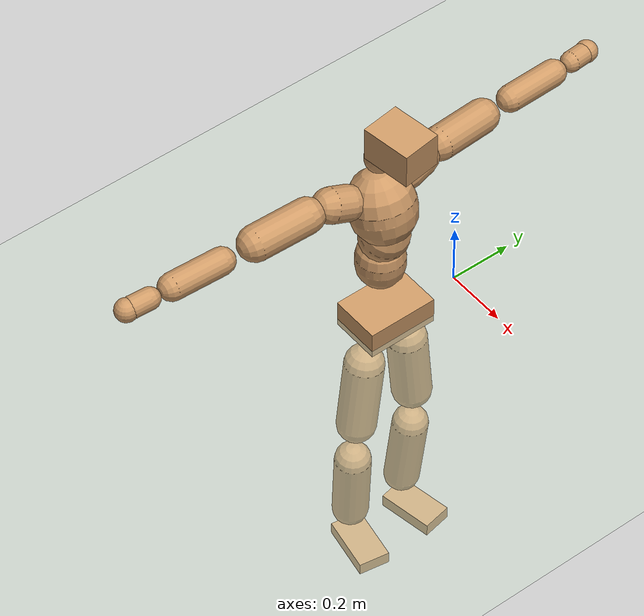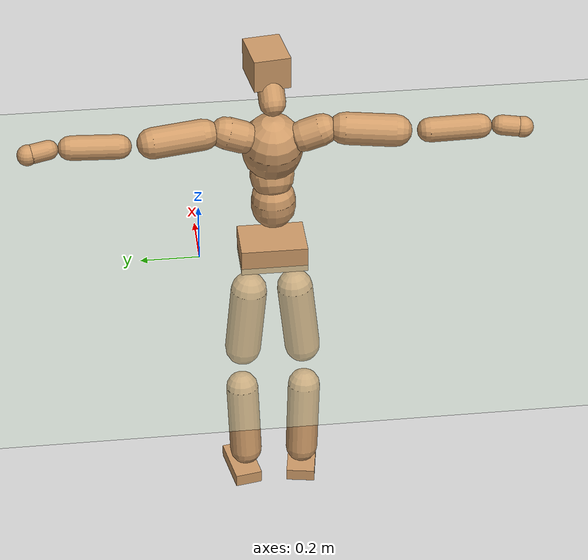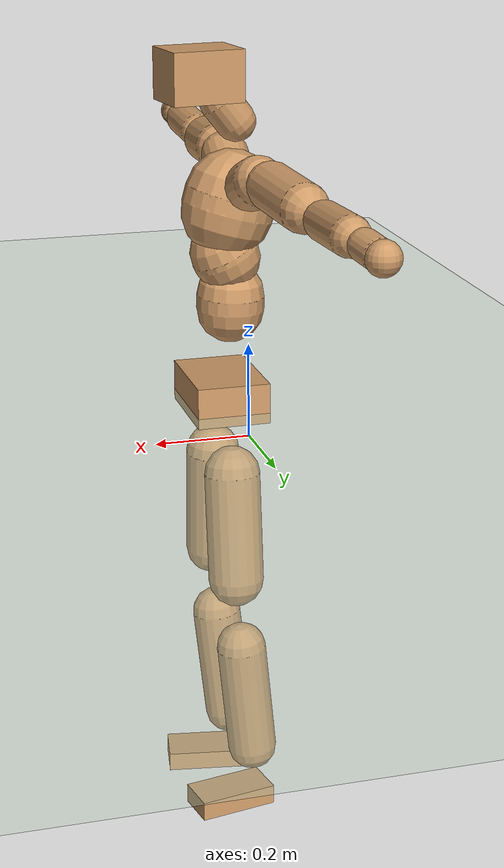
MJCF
<mujoco model="humanoid">
  <compiler coordinate="local" angle="radian"/>
  <default>
    <joint damping="0.0" armature="0.01" stiffness="0.0" limited="true"/>
    <geom conaffinity="1" condim="3" contype="7" margin="0.001" rgba="0.8 0.6 .4 1"/>
  </default>
  <asset>
    <texture type="skybox" builtin="gradient" rgb1=".4 .5 .6" rgb2="0 0 0" width="100" height="100"/>
    <texture builtin="flat" height="1278" mark="cross" markrgb="1 1 1" name="texgeom" random="0.01" rgb1="0.8 0.6 0.4" rgb2="0.8 0.6 0.4" type="cube" width="127"/>
    <texture builtin="checker" height="100" name="texplane" rgb1="0 0 0" rgb2="0.8 0.8 0.8" type="2d" width="100"/>
    <material name="MatPlane" reflectance="0.5" shininess="1" specular="1" texrepeat="60 60" texture="texplane"/>
    <material name="geom" texture="texgeom" texuniform="true"/>
  </asset>
  <worldbody>
    <light cutoff="100" diffuse="1 1 1" dir="-0 0 -1.3" directional="true" exponent="1" pos="0 0 1.3" specular=".1 .1 .1"/>
    <geom conaffinity="1" condim="3" name="floor" pos="0 0 0" rgba="0.8 0.9 0.8 1" size="100 100 .2" type="plane" material="MatPlane"/>
    <body name="Pelvis" pos="0.0011 -0.2469 0.0328">
      <freejoint name="Pelvis"/>
      <geom type="box" contype="1" conaffinity="1" density="500" pos="-0.0064 0.0000 -0.0133" size="0.0804 0.1121 0.0449" quat="1.0000 0.0000 0.0000 -0.0000" name="Pelvis"/>
      <body name="L_Hip" pos="-0.008 0.073 -0.0976">
        <joint name="L_Hip_x" type="hinge" pos="0 0 0" axis="1 0 0" stiffness="800" damping="80" armature="0.02" range="-180.0000 180.0000"/>
        <joint name="L_Hip_y" type="hinge" pos="0 0 0" axis="0 1 0" stiffness="800" damping="80" armature="0.02" range="-180.0000 180.0000"/>
        <joint name="L_Hip_z" type="hinge" pos="0 0 0" axis="0 0 1" stiffness="800" damping="80" armature="0.02" range="-180.0000 180.0000"/>
        <geom type="capsule" contype="1" conaffinity="1" density="500" fromto="-0.0007 0.0077 -0.0815 -0.0027 0.0308 -0.3260" size="0.0618" name="L_Hip"/>
        <body name="L_Knee" pos="-0.0034 0.0385 -0.4075">
          <joint name="L_Knee_x" type="hinge" pos="0 0 0" axis="1 0 0" stiffness="800" damping="80" armature="0.02" range="-180.0000 180.0000"/>
          <joint name="L_Knee_y" type="hinge" pos="0 0 0" axis="0 1 0" stiffness="800" damping="80" armature="0.02" range="-180.0000 180.0000"/>
          <joint name="L_Knee_z" type="hinge" pos="0 0 0" axis="0 0 1" stiffness="800" damping="80" armature="0.02" range="-180.0000 180.0000"/>
          <geom type="capsule" contype="1" conaffinity="1" density="500" fromto="-0.0091 -0.0027 -0.0870 -0.0366 -0.0110 -0.3478" size="0.0556" name="L_Knee"/>
          <body name="L_Ankle" pos="-0.0457 -0.0137 -0.4348">
            <joint name="L_Ankle_x" type="hinge" pos="0 0 0" axis="1 0 0" stiffness="800" damping="80" armature="0.02" range="-180.0000 180.0000"/>
            <joint name="L_Ankle_y" type="hinge" pos="0 0 0" axis="0 1 0" stiffness="800" damping="80" armature="0.02" range="-180.0000 180.0000"/>
            <joint name="L_Ankle_z" type="hinge" pos="0 0 0" axis="0 0 1" stiffness="800" damping="80" armature="0.02" range="-180.0000 180.0000"/>
            <geom type="box" contype="1" conaffinity="1" density="500" pos="0.0640 0.0118 -0.0311" size="0.0896 0.0475 0.0222" quat="0.9958 0.0000 0.0000 0.0910" name="L_Ankle"/>
            <body name="L_Toe" pos="0.128 0.0236 -0.0621">
              <joint name="L_Toe_x" type="hinge" pos="0 0 0" axis="1 0 0" stiffness="500" damping="50" armature="0.02" range="-180.0000 180.0000"/>
              <joint name="L_Toe_y" type="hinge" pos="0 0 0" axis="0 1 0" stiffness="500" damping="50" armature="0.02" range="-180.0000 180.0000"/>
              <joint name="L_Toe_z" type="hinge" pos="0 0 0" axis="0 0 1" stiffness="500" damping="50" armature="0.02" range="-180.0000 180.0000"/>
              <geom type="box" contype="1" conaffinity="1" density="500" pos="0.0000 0.0000 0.0316" size="0.0009 0.0024 0.0011" quat="0.9953 0.0000 0.0000 0.0970" name="L_Toe"/>
            </body>
          </body>
        </body>
      </body>
      <body name="R_Hip" pos="-0.0043 -0.0689 -0.0963">
        <joint name="R_Hip_x" type="hinge" pos="0 0 0" axis="1 0 0" stiffness="800" damping="80" armature="0.02" range="-180.0000 180.0000"/>
        <joint name="R_Hip_y" type="hinge" pos="0 0 0" axis="0 1 0" stiffness="800" damping="80" armature="0.02" range="-180.0000 180.0000"/>
        <joint name="R_Hip_z" type="hinge" pos="0 0 0" axis="0 0 1" stiffness="800" damping="80" armature="0.02" range="-180.0000 180.0000"/>
        <geom type="capsule" contype="1" conaffinity="1" density="500" fromto="-0.0012 -0.0089 -0.0834 -0.0050 -0.0357 -0.3337" size="0.0609" name="R_Hip"/>
        <body name="R_Knee" pos="-0.0062 -0.0447 -0.4172">
          <joint name="R_Knee_x" type="hinge" pos="0 0 0" axis="1 0 0" stiffness="800" damping="80" armature="0.02" range="-180.0000 180.0000"/>
          <joint name="R_Knee_y" type="hinge" pos="0 0 0" axis="0 1 0" stiffness="800" damping="80" armature="0.02" range="-180.0000 180.0000"/>
          <joint name="R_Knee_z" type="hinge" pos="0 0 0" axis="0 0 1" stiffness="800" damping="80" armature="0.02" range="-180.0000 180.0000"/>
          <geom type="capsule" contype="1" conaffinity="1" density="500" fromto="-0.0088 0.0034 -0.0871 -0.0354 0.0136 -0.3484" size="0.056" name="R_Knee"/>
          <body name="R_Ankle" pos="-0.0442 0.017 -0.4355">
            <joint name="R_Ankle_x" type="hinge" pos="0 0 0" axis="1 0 0" stiffness="800" damping="80" armature="0.02" range="-180.0000 180.0000"/>
            <joint name="R_Ankle_y" type="hinge" pos="0 0 0" axis="0 1 0" stiffness="800" damping="80" armature="0.02" range="-180.0000 180.0000"/>
            <joint name="R_Ankle_z" type="hinge" pos="0 0 0" axis="0 0 1" stiffness="800" damping="80" armature="0.02" range="-180.0000 180.0000"/>
            <geom type="box" contype="1" conaffinity="1" density="500" pos="0.0658 -0.0112 -0.0257" size="0.0915 0.0496 0.0215" quat="0.9964 0.0000 0.0000 -0.0844" name="R_Ankle"/>
            <body name="R_Toe" pos="0.1317 -0.0225 -0.0514">
              <joint name="R_Toe_x" type="hinge" pos="0 0 0" axis="1 0 0" stiffness="500" damping="50" armature="0.02" range="-180.0000 180.0000"/>
              <joint name="R_Toe_y" type="hinge" pos="0 0 0" axis="0 1 0" stiffness="500" damping="50" armature="0.02" range="-180.0000 180.0000"/>
              <joint name="R_Toe_z" type="hinge" pos="0 0 0" axis="0 0 1" stiffness="500" damping="50" armature="0.02" range="-180.0000 180.0000"/>
              <geom type="box" contype="1" conaffinity="1" density="500" pos="0.0000 0.0000 0.0296" size="0.0009 0.0024 0.0013" quat="0.9971 0.0000 0.0000 -0.0759" name="R_Toe"/>
            </body>
          </body>
        </body>
      </body>
      <body name="Torso" pos="-0.0263 -0.0041 0.1143">
        <joint name="Torso_x" type="hinge" pos="0 0 0" axis="1 0 0" stiffness="1000" damping="100" armature="0.02" range="-180.0000 180.0000"/>
        <joint name="Torso_y" type="hinge" pos="0 0 0" axis="0 1 0" stiffness="1000" damping="100" armature="0.02" range="-180.0000 180.0000"/>
        <joint name="Torso_z" type="hinge" pos="0 0 0" axis="0 0 1" stiffness="1000" damping="100" armature="0.02" range="-180.0000 180.0000"/>
        <geom type="capsule" contype="1" conaffinity="1" density="500" fromto="-0.0028 0.0030 0.0923 -0.0018 0.0020 0.0615" size="0.0743" name="Torso"/>
        <body name="Spine" pos="-0.0046 0.005 0.1538">
          <joint name="Spine_x" type="hinge" pos="0 0 0" axis="1 0 0" stiffness="1000" damping="100" armature="0.02" range="-180.0000 180.0000"/>
          <joint name="Spine_y" type="hinge" pos="0 0 0" axis="0 1 0" stiffness="1000" damping="100" armature="0.02" range="-180.0000 180.0000"/>
          <joint name="Spine_z" type="hinge" pos="0 0 0" axis="0 0 1" stiffness="1000" damping="100" armature="0.02" range="-180.0000 180.0000"/>
          <geom type="capsule" contype="1" conaffinity="1" density="500" fromto="0.0171 0.0007 0.0345 0.0114 0.0005 0.0230" size="0.0745" name="Spine"/>
          <body name="Chest" pos="0.0285 0.0012 0.0574">
            <joint name="Chest_x" type="hinge" pos="0 0 0" axis="1 0 0" stiffness="1000" damping="100" armature="0.02" range="-180.0000 180.0000"/>
            <joint name="Chest_y" type="hinge" pos="0 0 0" axis="0 1 0" stiffness="1000" damping="100" armature="0.02" range="-180.0000 180.0000"/>
            <joint name="Chest_z" type="hinge" pos="0 0 0" axis="0 0 1" stiffness="1000" damping="100" armature="0.02" range="-180.0000 180.0000"/>
            <geom type="capsule" contype="1" conaffinity="1" density="500" fromto="-0.0286 -0.0007 0.1009 -0.0191 -0.0004 0.0672" size="0.1003" name="Chest"/>
            <body name="Neck" pos="-0.051 -0.0014 0.2436">
              <joint name="Neck_x" type="hinge" pos="0 0 0" axis="1 0 0" stiffness="500" damping="50" armature="0.02" range="-180.0000 180.0000"/>
              <joint name="Neck_y" type="hinge" pos="0 0 0" axis="0 1 0" stiffness="500" damping="50" armature="0.02" range="-180.0000 180.0000"/>
              <joint name="Neck_z" type="hinge" pos="0 0 0" axis="0 0 1" stiffness="500" damping="50" armature="0.02" range="-180.0000 180.0000"/>
              <geom type="capsule" contype="1" conaffinity="1" density="500" fromto="0.0123 0.0014 0.0155 0.0490 0.0054 0.0621" size="0.0438" name="Neck"/>
              <body name="Head" pos="0.0613 0.0068 0.0776">
                <joint name="Head_x" type="hinge" pos="0 0 0" axis="1 0 0" stiffness="500" damping="50" armature="0.02" range="-180.0000 180.0000"/>
                <joint name="Head_y" type="hinge" pos="0 0 0" axis="0 1 0" stiffness="500" damping="50" armature="0.02" range="-180.0000 180.0000"/>
                <joint name="Head_z" type="hinge" pos="0 0 0" axis="0 0 1" stiffness="500" damping="50" armature="0.02" range="-180.0000 180.0000"/>
                <geom type="box" contype="1" conaffinity="1" density="500" pos="0.0317 0.0044 0.0398" size="0.0788 0.0611 0.0549" quat="0.9976 0.0000 0.0000 0.0686" name="Head"/>
              </body>
            </body>
            <body name="L_Thorax" pos="-0.0422 0.0799 0.1323">
              <joint name="L_Thorax_x" type="hinge" pos="0 0 0" axis="1 0 0" stiffness="500" damping="50" armature="0.02" range="-180.0000 180.0000"/>
              <joint name="L_Thorax_y" type="hinge" pos="0 0 0" axis="0 1 0" stiffness="500" damping="50" armature="0.02" range="-180.0000 180.0000"/>
              <joint name="L_Thorax_z" type="hinge" pos="0 0 0" axis="0 0 1" stiffness="500" damping="50" armature="0.02" range="-180.0000 180.0000"/>
              <geom type="capsule" contype="1" conaffinity="1" density="500" fromto="-0.0009 0.0180 0.0071 -0.0035 0.0721 0.0284" size="0.0536" name="L_Thorax"/>
              <body name="L_Shoulder" pos="-0.0043 0.0901 0.0355">
                <joint name="L_Shoulder_x" type="hinge" pos="0 0 0" axis="1 0 0" stiffness="500" damping="50" armature="0.02" range="-720.0000 720.0000"/>
                <joint name="L_Shoulder_y" type="hinge" pos="0 0 0" axis="0 1 0" stiffness="500" damping="50" armature="0.02" range="-720.0000 720.0000"/>
                <joint name="L_Shoulder_z" type="hinge" pos="0 0 0" axis="0 0 1" stiffness="500" damping="50" armature="0.02" range="-720.0000 720.0000"/>
                <geom type="capsule" contype="1" conaffinity="1" density="500" fromto="-0.0058 0.0555 -0.0035 -0.0231 0.2220 -0.0140" size="0.0515" name="L_Shoulder"/>
                <body name="L_Elbow" pos="-0.0289 0.2775 -0.0175">
                  <joint name="L_Elbow_x" type="hinge" pos="0 0 0" axis="1 0 0" stiffness="500" damping="50" armature="0.02" range="-720.0000 720.0000"/>
                  <joint name="L_Elbow_y" type="hinge" pos="0 0 0" axis="0 1 0" stiffness="500" damping="50" armature="0.02" range="-720.0000 720.0000"/>
                  <joint name="L_Elbow_z" type="hinge" pos="0 0 0" axis="0 0 1" stiffness="500" damping="50" armature="0.02" range="-720.0000 720.0000"/>
                  <geom type="capsule" contype="1" conaffinity="1" density="500" fromto="0.0001 0.0524 0.0021 0.0004 0.2095 0.0082" size="0.0403" name="L_Elbow"/>
                  <body name="L_Wrist" pos="0.0005 0.2619 0.0103">
                    <joint name="L_Wrist_x" type="hinge" pos="0 0 0" axis="1 0 0" stiffness="300" damping="30" armature="0.02" range="-180.0000 180.0000"/>
                    <joint name="L_Wrist_y" type="hinge" pos="0 0 0" axis="0 1 0" stiffness="300" damping="30" armature="0.02" range="-180.0000 180.0000"/>
                    <joint name="L_Wrist_z" type="hinge" pos="0 0 0" axis="0 0 1" stiffness="300" damping="30" armature="0.02" range="-180.0000 180.0000"/>
                    <geom type="capsule" contype="1" conaffinity="1" density="500" fromto="-0.0028 0.0170 -0.0021 -0.0113 0.0681 -0.0083" size="0.032" name="L_Wrist"/>
                    <body name="L_Hand" pos="-0.0142 0.0851 -0.0104">
                      <joint name="L_Hand_x" type="hinge" pos="0 0 0" axis="1 0 0" stiffness="300" damping="30" armature="0.02" range="-180.0000 180.0000"/>
                      <joint name="L_Hand_y" type="hinge" pos="0 0 0" axis="0 1 0" stiffness="300" damping="30" armature="0.02" range="-180.0000 180.0000"/>
                      <joint name="L_Hand_z" type="hinge" pos="0 0 0" axis="0 0 1" stiffness="300" damping="30" armature="0.02" range="-180.0000 180.0000"/>
                      <geom type="sphere" contype="1" conaffinity="1" density="500" size="0.0342" pos="0.0000 0.0000 0.0000" name="L_Hand"/>
                    </body>
                  </body>
                </body>
              </body>
            </body>
            <body name="R_Thorax" pos="-0.0497 -0.0818 0.1284">
              <joint name="R_Thorax_x" type="hinge" pos="0 0 0" axis="1 0 0" stiffness="500" damping="50" armature="0.02" range="-180.0000 180.0000"/>
              <joint name="R_Thorax_y" type="hinge" pos="0 0 0" axis="0 1 0" stiffness="500" damping="50" armature="0.02" range="-180.0000 180.0000"/>
              <joint name="R_Thorax_z" type="hinge" pos="0 0 0" axis="0 0 1" stiffness="500" damping="50" armature="0.02" range="-180.0000 180.0000"/>
              <geom type="capsule" contype="1" conaffinity="1" density="500" fromto="-0.0018 -0.0192 0.0075 -0.0070 -0.0766 0.0299" size="0.0527" name="R_Thorax"/>
              <body name="R_Shoulder" pos="-0.0088 -0.0958 0.0373">
                <joint name="R_Shoulder_x" type="hinge" pos="0 0 0" axis="1 0 0" stiffness="500" damping="50" armature="0.02" range="-720.0000 720.0000"/>
                <joint name="R_Shoulder_y" type="hinge" pos="0 0 0" axis="0 1 0" stiffness="500" damping="50" armature="0.02" range="-720.0000 720.0000"/>
                <joint name="R_Shoulder_z" type="hinge" pos="0 0 0" axis="0 0 1" stiffness="500" damping="50" armature="0.02" range="-720.0000 720.0000"/>
                <geom type="capsule" contype="1" conaffinity="1" density="500" fromto="-0.0046 -0.0553 -0.0039 -0.0183 -0.2212 -0.0156" size="0.0534" name="R_Shoulder"/>
                <body name="R_Elbow" pos="-0.0229 -0.2765 -0.0195">
                  <joint name="R_Elbow_x" type="hinge" pos="0 0 0" axis="1 0 0" stiffness="500" damping="50" armature="0.02" range="-720.0000 720.0000"/>
                  <joint name="R_Elbow_y" type="hinge" pos="0 0 0" axis="0 1 0" stiffness="500" damping="50" armature="0.02" range="-720.0000 720.0000"/>
                  <joint name="R_Elbow_z" type="hinge" pos="0 0 0" axis="0 0 1" stiffness="500" damping="50" armature="0.02" range="-720.0000 720.0000"/>
                  <geom type="capsule" contype="1" conaffinity="1" density="500" fromto="-0.0010 -0.0546 0.0018 -0.0041 -0.2184 0.0072" size="0.0407" name="R_Elbow"/>
                  <body name="R_Wrist" pos="-0.0051 -0.273 0.009">
                    <joint name="R_Wrist_x" type="hinge" pos="0 0 0" axis="1 0 0" stiffness="300" damping="30" armature="0.02" range="-180.0000 180.0000"/>
                    <joint name="R_Wrist_y" type="hinge" pos="0 0 0" axis="0 1 0" stiffness="300" damping="30" armature="0.02" range="-180.0000 180.0000"/>
                    <joint name="R_Wrist_z" type="hinge" pos="0 0 0" axis="0 0 1" stiffness="300" damping="30" armature="0.02" range="-180.0000 180.0000"/>
                    <geom type="capsule" contype="1" conaffinity="1" density="500" fromto="-0.0022 -0.0175 -0.0015 -0.0089 -0.0698 -0.0062" size="0.0331" name="R_Wrist"/>
                    <body name="R_Hand" pos="-0.0111 -0.0873 -0.0077">
                      <joint name="R_Hand_x" type="hinge" pos="0 0 0" axis="1 0 0" stiffness="300" damping="30" armature="0.02" range="-180.0000 180.0000"/>
                      <joint name="R_Hand_y" type="hinge" pos="0 0 0" axis="0 1 0" stiffness="300" damping="30" armature="0.02" range="-180.0000 180.0000"/>
                      <joint name="R_Hand_z" type="hinge" pos="0 0 0" axis="0 0 1" stiffness="300" damping="30" armature="0.02" range="-180.0000 180.0000"/>
                      <geom type="sphere" contype="1" conaffinity="1" density="500" size="0.0349" pos="0.0000 0.0000 0.0000" name="R_Hand"/>
                    </body>
                  </body>
                </body>
              </body>
            </body>
          </body>
        </body>
      </body>
    </body>
  </worldbody>
  <actuator>
    <motor name="L_Hip_x" joint="L_Hip_x" gear="500"/>
    <motor name="L_Hip_y" joint="L_Hip_y" gear="500"/>
    <motor name="L_Hip_z" joint="L_Hip_z" gear="500"/>
    <motor name="L_Knee_x" joint="L_Knee_x" gear="500"/>
    <motor name="L_Knee_y" joint="L_Knee_y" gear="500"/>
    <motor name="L_Knee_z" joint="L_Knee_z" gear="500"/>
    <motor name="L_Ankle_x" joint="L_Ankle_x" gear="500"/>
    <motor name="L_Ankle_y" joint="L_Ankle_y" gear="500"/>
    <motor name="L_Ankle_z" joint="L_Ankle_z" gear="500"/>
    <motor name="L_Toe_x" joint="L_Toe_x" gear="500"/>
    <motor name="L_Toe_y" joint="L_Toe_y" gear="500"/>
    <motor name="L_Toe_z" joint="L_Toe_z" gear="500"/>
    <motor name="R_Hip_x" joint="R_Hip_x" gear="500"/>
    <motor name="R_Hip_y" joint="R_Hip_y" gear="500"/>
    <motor name="R_Hip_z" joint="R_Hip_z" gear="500"/>
    <motor name="R_Knee_x" joint="R_Knee_x" gear="500"/>
    <motor name="R_Knee_y" joint="R_Knee_y" gear="500"/>
    <motor name="R_Knee_z" joint="R_Knee_z" gear="500"/>
    <motor name="R_Ankle_x" joint="R_Ankle_x" gear="500"/>
    <motor name="R_Ankle_y" joint="R_Ankle_y" gear="500"/>
    <motor name="R_Ankle_z" joint="R_Ankle_z" gear="500"/>
    <motor name="R_Toe_x" joint="R_Toe_x" gear="500"/>
    <motor name="R_Toe_y" joint="R_Toe_y" gear="500"/>
    <motor name="R_Toe_z" joint="R_Toe_z" gear="500"/>
    <motor name="Torso_x" joint="Torso_x" gear="500"/>
    <motor name="Torso_y" joint="Torso_y" gear="500"/>
    <motor name="Torso_z" joint="Torso_z" gear="500"/>
    <motor name="Spine_x" joint="Spine_x" gear="500"/>
    <motor name="Spine_y" joint="Spine_y" gear="500"/>
    <motor name="Spine_z" joint="Spine_z" gear="500"/>
    <motor name="Chest_x" joint="Chest_x" gear="500"/>
    <motor name="Chest_y" joint="Chest_y" gear="500"/>
    <motor name="Chest_z" joint="Chest_z" gear="500"/>
    <motor name="Neck_x" joint="Neck_x" gear="500"/>
    <motor name="Neck_y" joint="Neck_y" gear="500"/>
    <motor name="Neck_z" joint="Neck_z" gear="500"/>
    <motor name="Head_x" joint="Head_x" gear="500"/>
    <motor name="Head_y" joint="Head_y" gear="500"/>
    <motor name="Head_z" joint="Head_z" gear="500"/>
    <motor name="L_Thorax_x" joint="L_Thorax_x" gear="500"/>
    <motor name="L_Thorax_y" joint="L_Thorax_y" gear="500"/>
    <motor name="L_Thorax_z" joint="L_Thorax_z" gear="500"/>
    <motor name="L_Shoulder_x" joint="L_Shoulder_x" gear="500"/>
    <motor name="L_Shoulder_y" joint="L_Shoulder_y" gear="500"/>
    <motor name="L_Shoulder_z" joint="L_Shoulder_z" gear="500"/>
    <motor name="L_Elbow_x" joint="L_Elbow_x" gear="500"/>
    <motor name="L_Elbow_y" joint="L_Elbow_y" gear="500"/>
    <motor name="L_Elbow_z" joint="L_Elbow_z" gear="500"/>
    <motor name="L_Wrist_x" joint="L_Wrist_x" gear="500"/>
    <motor name="L_Wrist_y" joint="L_Wrist_y" gear="500"/>
    <motor name="L_Wrist_z" joint="L_Wrist_z" gear="500"/>
    <motor name="L_Hand_x" joint="L_Hand_x" gear="500"/>
    <motor name="L_Hand_y" joint="L_Hand_y" gear="500"/>
    <motor name="L_Hand_z" joint="L_Hand_z" gear="500"/>
    <motor name="R_Thorax_x" joint="R_Thorax_x" gear="500"/>
    <motor name="R_Thorax_y" joint="R_Thorax_y" gear="500"/>
    <motor name="R_Thorax_z" joint="R_Thorax_z" gear="500"/>
    <motor name="R_Shoulder_x" joint="R_Shoulder_x" gear="500"/>
    <motor name="R_Shoulder_y" joint="R_Shoulder_y" gear="500"/>
    <motor name="R_Shoulder_z" joint="R_Shoulder_z" gear="500"/>
    <motor name="R_Elbow_x" joint="R_Elbow_x" gear="500"/>
    <motor name="R_Elbow_y" joint="R_Elbow_y" gear="500"/>
    <motor name="R_Elbow_z" joint="R_Elbow_z" gear="500"/>
    <motor name="R_Wrist_x" joint="R_Wrist_x" gear="500"/>
    <motor name="R_Wrist_y" joint="R_Wrist_y" gear="500"/>
    <motor name="R_Wrist_z" joint="R_Wrist_z" gear="500"/>
    <motor name="R_Hand_x" joint="R_Hand_x" gear="500"/>
    <motor name="R_Hand_y" joint="R_Hand_y" gear="500"/>
    <motor name="R_Hand_z" joint="R_Hand_z" gear="500"/>
  </actuator>
  <contact>
    <exclude body1="Torso" body2="Chest"/>
    <exclude body1="Head" body2="Chest"/>
    <exclude body1="R_Knee" body2="R_Toe"/>
    <exclude body1="R_Knee" body2="L_Ankle"/>
    <exclude body1="R_Knee" body2="L_Toe"/>
    <exclude body1="L_Knee" body2="L_Toe"/>
    <exclude body1="L_Knee" body2="R_Ankle"/>
    <exclude body1="L_Knee" body2="R_Toe"/>
    <exclude body1="L_Shoulder" body2="Chest"/>
    <exclude body1="R_Shoulder" body2="Chest"/>
  </contact>
  <sensor/>
  <size njmax="700" nconmax="700"/>
</mujoco>
